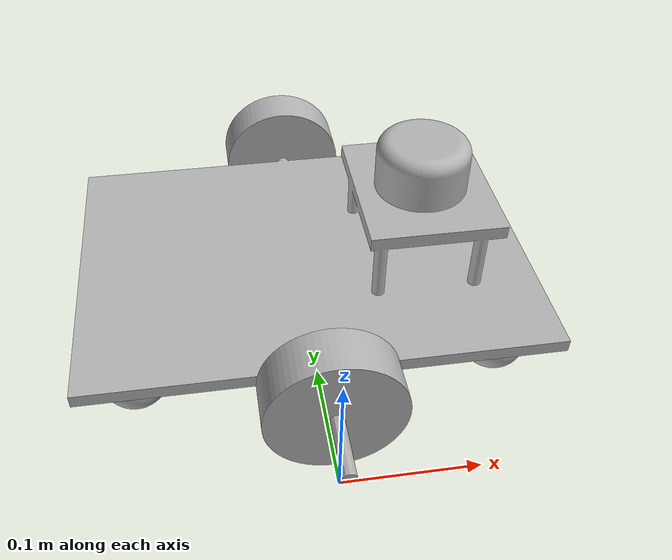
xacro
<?xml version="1.0" ?>
<robot name="buggy" xmlns:xacro="http://www.ros.org/wiki/xacro">

<xacro:include filename="$(find buggy_description)/urdf/materials.xacro" />

<xacro:include filename="$(find buggy_description)/gazebo/buggy_materials.gazebo" />
<xacro:include filename="$(find buggy_description)/gazebo/buggy_plugins.gazebo" />
<xacro:include filename="$(find buggy_description)/gazebo/buggy_physics.gazebo" />

<link name="base_link">
  <inertial>
    <origin rpy="0 0 0" xyz="0.011871301788699948 0.1783866419374916 0.057476992165636155"/>
    <mass value="7.990943955271437"/>
    <inertia ixx="0.042042" ixy="0.000365" ixz="-0.004659" iyy="0.081574" iyz="0.000231" izz="0.11738"/>
  </inertial>
  <visual>
    <origin rpy="0 0 0" xyz="0 0 0"/>
    <geometry>
      <mesh filename="package://buggy_description/meshes/base_link.stl" scale="0.001 0.001 0.001"/>
    </geometry>
    <material name="silver"/>
  </visual>
  <collision>
    <origin rpy="0 0 0" xyz="0 0 0"/>
    <geometry>
      <mesh filename="package://buggy_description/meshes/base_link.stl" scale="0.001 0.001 0.001"/>
    </geometry>
  </collision>
</link>

<link name="laser">
  <inertial>
    <origin rpy="0 0 0" xyz="2.7755575615628914e-17 1.1102230246251565e-16 0.019476889152607244"/>
    <mass value="1.173731094958711"/>
    <inertia ixx="0.000501" ixy="-0.0" ixz="0.0" iyy="0.000501" iyz="0.0" izz="0.000703"/>
  </inertial>
  <visual>
    <origin rpy="0 0 0" xyz="-0.09 -0.1745 -0.115"/>
    <geometry>
      <mesh filename="package://buggy_description/meshes/laser.stl" scale="0.001 0.001 0.001"/>
    </geometry>
    <material name="silver"/>
  </visual>
  <collision>
    <origin rpy="0 0 0" xyz="-0.09 -0.1745 -0.115"/>
    <geometry>
      <mesh filename="package://buggy_description/meshes/laser.stl" scale="0.001 0.001 0.001"/>
    </geometry>
  </collision>
</link>

<link name="left_wheel_1">
  <inertial>
    <origin rpy="0 0 0" xyz="5.280983235579405e-15 0.017500000000000016 0.0"/>
    <mass value="2.1363026393951428"/>
    <inertia ixx="0.001567" ixy="-0.0" ixz="0.0" iyy="0.002697" iyz="-0.0" izz="0.001567"/>
  </inertial>
  <visual>
    <origin rpy="0 0 0" xyz="-0.0 -0.31 -0.05"/>
    <geometry>
      <mesh filename="package://buggy_description/meshes/left_wheel_1.stl" scale="0.001 0.001 0.001"/>
    </geometry>
    <material name="silver"/>
  </visual>
  <collision>
    <origin rpy="0 0 0" xyz="-0.0 -0.31 -0.05"/>
    <geometry>
      <mesh filename="package://buggy_description/meshes/left_wheel_1.stl" scale="0.001 0.001 0.001"/>
    </geometry>
  </collision>
</link>

<link name="wheel_right_1">
  <inertial>
    <origin rpy="0 0 0" xyz="5.2834205004419886e-15 -0.01750000000000005 -2.7755575615628914e-17"/>
    <mass value="2.1363026393951428"/>
    <inertia ixx="0.001567" ixy="-0.0" ixz="-0.0" iyy="0.002697" iyz="0.0" izz="0.001567"/>
  </inertial>
  <visual>
    <origin rpy="0 0 0" xyz="-0.0 -0.05 -0.05"/>
    <geometry>
      <mesh filename="package://buggy_description/meshes/wheel_right_1.stl" scale="0.001 0.001 0.001"/>
    </geometry>
    <material name="silver"/>
  </visual>
  <collision>
    <origin rpy="0 0 0" xyz="-0.0 -0.05 -0.05"/>
    <geometry>
      <mesh filename="package://buggy_description/meshes/wheel_right_1.stl" scale="0.001 0.001 0.001"/>
    </geometry>
  </collision>
</link>

<link name="castor_right_rear_1">
  <inertial>
    <origin rpy="0 0 0" xyz="0.0 0.0 -0.018806818181818175"/>
    <mass value="0.5651594284114136"/>
    <inertia ixx="0.000153" ixy="0.0" ixz="0.0" iyy="0.000153" iyz="-0.0" izz="0.000161"/>
  </inertial>
  <visual>
    <origin rpy="0 0 0" xyz="0.135 -0.095 -0.045"/>
    <geometry>
      <mesh filename="package://buggy_description/meshes/castor_right_rear_1.stl" scale="0.001 0.001 0.001"/>
    </geometry>
    <material name="silver"/>
  </visual>
  <collision>
    <origin rpy="0 0 0" xyz="0.135 -0.095 -0.045"/>
    <geometry>
      <mesh filename="package://buggy_description/meshes/castor_right_rear_1.stl" scale="0.001 0.001 0.001"/>
    </geometry>
  </collision>
</link>

<link name="castor_front_right_1">
  <inertial>
    <origin rpy="0 0 0" xyz="0.0 0.0 -0.018806818181818175"/>
    <mass value="0.5651594284114136"/>
    <inertia ixx="0.000153" ixy="-0.0" ixz="-0.0" iyy="0.000153" iyz="-0.0" izz="0.000161"/>
  </inertial>
  <visual>
    <origin rpy="0 0 0" xyz="-0.135 -0.095 -0.045"/>
    <geometry>
      <mesh filename="package://buggy_description/meshes/castor_front_right_1.stl" scale="0.001 0.001 0.001"/>
    </geometry>
    <material name="silver"/>
  </visual>
  <collision>
    <origin rpy="0 0 0" xyz="-0.135 -0.095 -0.045"/>
    <geometry>
      <mesh filename="package://buggy_description/meshes/castor_front_right_1.stl" scale="0.001 0.001 0.001"/>
    </geometry>
  </collision>
</link>

<link name="castor_ledt_front_1">
  <inertial>
    <origin rpy="0 0 0" xyz="0.0 0.0 -0.018806818181818175"/>
    <mass value="0.5651594284114136"/>
    <inertia ixx="0.000153" ixy="0.0" ixz="-0.0" iyy="0.000153" iyz="0.0" izz="0.000161"/>
  </inertial>
  <visual>
    <origin rpy="0 0 0" xyz="-0.135 -0.265 -0.045"/>
    <geometry>
      <mesh filename="package://buggy_description/meshes/castor_ledt_front_1.stl" scale="0.001 0.001 0.001"/>
    </geometry>
    <material name="silver"/>
  </visual>
  <collision>
    <origin rpy="0 0 0" xyz="-0.135 -0.265 -0.045"/>
    <geometry>
      <mesh filename="package://buggy_description/meshes/castor_ledt_front_1.stl" scale="0.001 0.001 0.001"/>
    </geometry>
  </collision>
</link>

<link name="castor_left_rear_1">
  <inertial>
    <origin rpy="0 0 0" xyz="0.0 0.0 -0.018806818181818175"/>
    <mass value="0.5651594284114136"/>
    <inertia ixx="0.000153" ixy="0.0" ixz="0.0" iyy="0.000153" iyz="0.0" izz="0.000161"/>
  </inertial>
  <visual>
    <origin rpy="0 0 0" xyz="0.135 -0.265 -0.045"/>
    <geometry>
      <mesh filename="package://buggy_description/meshes/castor_left_rear_1.stl" scale="0.001 0.001 0.001"/>
    </geometry>
    <material name="silver"/>
  </visual>
  <collision>
    <origin rpy="0 0 0" xyz="0.135 -0.265 -0.045"/>
    <geometry>
      <mesh filename="package://buggy_description/meshes/castor_left_rear_1.stl" scale="0.001 0.001 0.001"/>
    </geometry>
  </collision>
</link>

<joint name="Rigid1" type="fixed">
  <origin rpy="0 0 0" xyz="0.09 0.1745 0.115"/>
  <parent link="base_link"/>
  <child link="laser"/>
</joint>

<joint name="Rev2" type="continuous">
  <origin rpy="0 0 0" xyz="0.0 0.31 0.05"/>
  <parent link="base_link"/>
  <child link="left_wheel_1"/>
  <axis xyz="0.0 1.0 0.0"/>
</joint>

<joint name="Rev3" type="continuous">
  <origin rpy="0 0 0" xyz="0.0 0.05 0.05"/>
  <parent link="base_link"/>
  <child link="wheel_right_1"/>
  <axis xyz="0.0 1.0 0.0"/>
</joint>

<joint name="Rigid4" type="fixed">
  <origin rpy="0 0 0" xyz="-0.135 0.095 0.045"/>
  <parent link="base_link"/>
  <child link="castor_right_rear_1"/>
</joint>

<joint name="Rigid5" type="fixed">
  <origin rpy="0 0 0" xyz="0.135 0.095 0.045"/>
  <parent link="base_link"/>
  <child link="castor_front_right_1"/>
</joint>

<joint name="Rigid6" type="fixed">
  <origin rpy="0 0 0" xyz="0.135 0.265 0.045"/>
  <parent link="base_link"/>
  <child link="castor_ledt_front_1"/>
</joint>

<joint name="Rigid7" type="fixed">
  <origin rpy="0 0 0" xyz="-0.135 0.265 0.045"/>
  <parent link="base_link"/>
  <child link="castor_left_rear_1"/>
</joint>

</robot>

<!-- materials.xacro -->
<robot name="buggy" xmlns:xacro="http://www.ros.org/wiki/xacro" >

<material name="silver">
  <color rgba="0.700 0.700 0.700 1.000"/>
</material>

</robot>

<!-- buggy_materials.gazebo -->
<robot name="buggy" xmlns:xacro="http://www.ros.org/wiki/xacro" >

<xacro:property name="body_color" value="Gazebo/White" />
<xacro:property name="blue_color" value="Gazebo/Blue" />
<xacro:property name="lidar_color" value="Gazebo/RedBright" />
<xacro:property name="metal_color" value="Gazebo/Grey" />
<xacro:property name="wheel_color" value="Gazebo/Black" />

<gazebo>
  <plugin filename="libgazebo_ros_control.so" name="control"/>
</gazebo>
<gazebo reference="base_link">
  <material>${body_color}</material>
</gazebo>

<gazebo reference="laser">
  <material>${lidar_color}</material>
</gazebo>

<gazebo reference="left_wheel_1">
  <material>${wheel_color}</material>
</gazebo>

<gazebo reference="wheel_right_1">
  <material>${wheel_color}</material>
</gazebo>

<gazebo reference="castor_right_rear_1">
  <material>${metal_color}</material>
</gazebo>

<gazebo reference="castor_front_right_1">
  <material>${metal_color}</material>
</gazebo>

<gazebo reference="castor_ledt_front_1">
  <material>${metal_color}</material>
</gazebo>

<gazebo reference="castor_left_rear_1">
  <material>${metal_color}</material>
</gazebo>

</robot>
